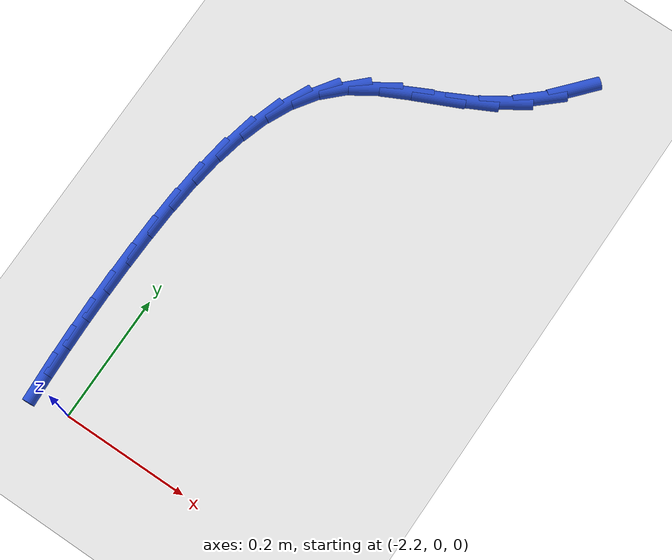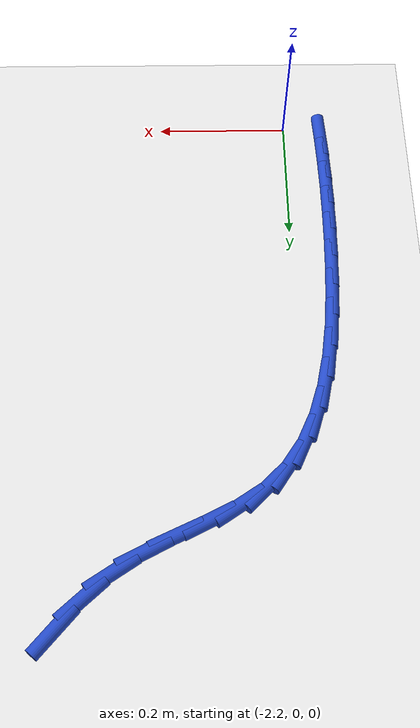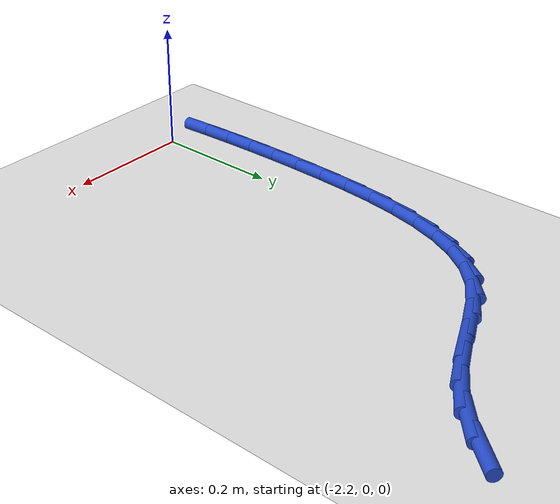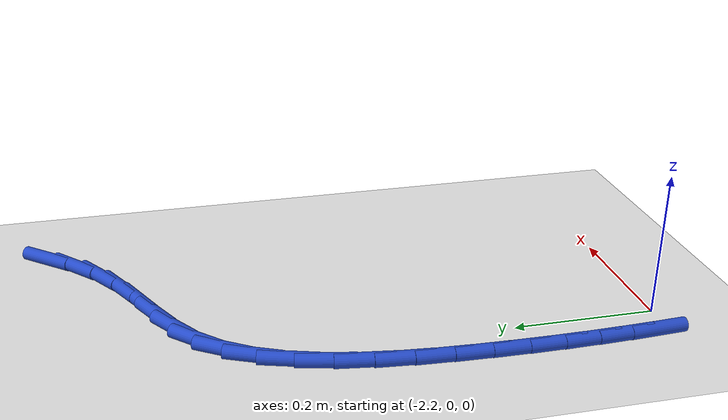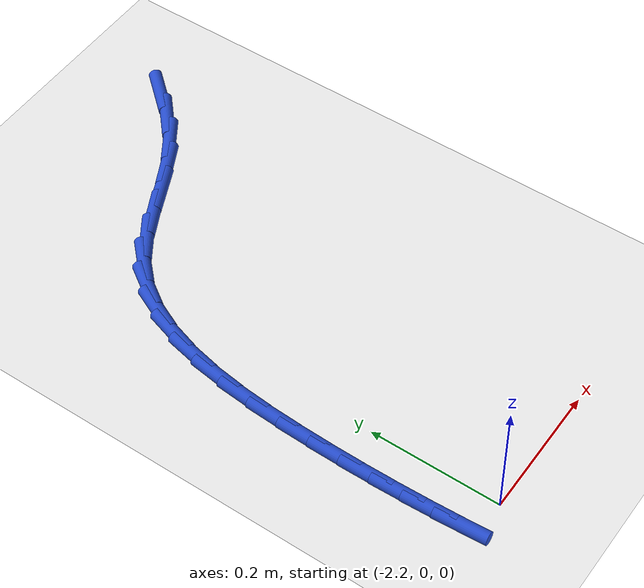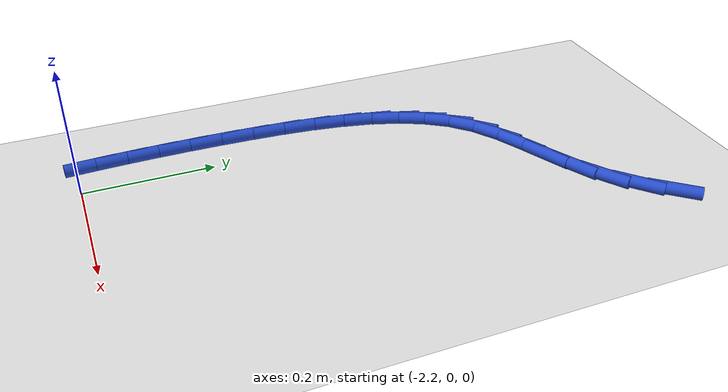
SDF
<sdf version="1.6">
 <world name="default">
  <model name="ground_plane">
   <static>1</static>
   <link name="link">
    <collision name="collision">
     <geometry><plane><normal>0 0 1</normal><size>100 100</size></plane></geometry>
     <surface><friction><ode><mu>100</mu><mu2>50</mu2></ode></friction></surface>
    </collision>
    <visual name="visual">
     <cast_shadows>0</cast_shadows>
     <geometry><plane><normal>0 0 1</normal><size>100 100</size></plane></geometry>
     <material>
      <script><uri>file://media/materials/scripts/gazebo.material</uri><name>Gazebo/WhiteGlow</name></script>
     </material>
    </visual>
   </link>
  </model>
  <model name="line">
   <link name="link_60">
    <pose>-1.8694316159370319 0.8093251097928374 0.01 0 1.57 0.8561077616490715</pose>
    <collision name="collision">
     <geometry><cylinder><radius>0.01</radius><length>0.08</length></cylinder></geometry>
    </collision>
    <visual name="visual">
     <material>
      <script><name>Gazebo/Blue</name><uri>file://media/materials/scripts/gazebo.material</uri></script>
     </material>
     <geometry><cylinder><radius>0.01</radius><length>0.08</length></cylinder></geometry>
    </visual>
   </link>
   <link name="link_61">
    <pose>-1.9036809981661496 0.7698542971834913 0.01 0 1.57 0.7330072373649285</pose>
    <collision name="collision">
     <geometry><cylinder><radius>0.01</radius><length>0.08</length></cylinder></geometry>
    </collision>
    <visual name="visual">
     <material>
      <script><name>Gazebo/Blue</name><uri>file://media/materials/scripts/gazebo.material</uri></script>
     </material>
     <geometry><cylinder><radius>0.01</radius><length>0.08</length></cylinder></geometry>
    </visual>
   </link>
   <link name="link_62">
    <pose>-1.9412636012015758 0.7360168822621146 0.01 0 1.57 0.5811434411380837</pose>
    <collision name="collision">
     <geometry><cylinder><radius>0.01</radius><length>0.08</length></cylinder></geometry>
    </collision>
    <visual name="visual">
     <material>
      <script><name>Gazebo/Blue</name><uri>file://media/materials/scripts/gazebo.material</uri></script>
     </material>
     <geometry><cylinder><radius>0.01</radius><length>0.08</length></cylinder></geometry>
    </visual>
   </link>
   <link name="link_63">
    <pose>-1.9824907852861735 0.7089387056081264 0.01 0 1.57 0.47345387876281536</pose>
    <collision name="collision">
     <geometry><cylinder><radius>0.01</radius><length>0.08</length></cylinder></geometry>
    </collision>
    <visual name="visual">
     <material>
      <script><name>Gazebo/Blue</name><uri>file://media/materials/scripts/gazebo.material</uri></script>
     </material>
     <geometry><cylinder><radius>0.01</radius><length>0.08</length></cylinder></geometry>
    </visual>
   </link>
   <link name="link_64">
    <pose>-2.025813441250407 0.6867437017705974 0.01 0 1.57 0.43521179561273854</pose>
    <collision name="collision">
     <geometry><cylinder><radius>0.01</radius><length>0.08</length></cylinder></geometry>
    </collision>
    <visual name="visual">
     <material>
      <script><name>Gazebo/Blue</name><uri>file://media/materials/scripts/gazebo.material</uri></script>
     </material>
     <geometry><cylinder><radius>0.01</radius><length>0.08</length></cylinder></geometry>
    </visual>
   </link>
   <link name="link_65">
    <pose>-2.0691009011688686 0.666617448169676 0.01 0 1.57 0.4696901879516021</pose>
    <collision name="collision">
     <geometry><cylinder><radius>0.01</radius><length>0.08</length></cylinder></geometry>
    </collision>
    <visual name="visual">
     <material>
      <script><name>Gazebo/Blue</name><uri>file://media/materials/scripts/gazebo.material</uri></script>
     </material>
     <geometry><cylinder><radius>0.01</radius><length>0.08</length></cylinder></geometry>
    </visual>
   </link>
   <link name="link_66">
    <pose>-2.110222300188062 0.6457452044779565 0.01 0 1.57 0.5858058856590932</pose>
    <collision name="collision">
     <geometry><cylinder><radius>0.01</radius><length>0.08</length></cylinder></geometry>
    </collision>
    <visual name="visual">
     <material>
      <script><name>Gazebo/Blue</name><uri>file://media/materials/scripts/gazebo.material</uri></script>
     </material>
     <geometry><cylinder><radius>0.01</radius><length>0.08</length></cylinder></geometry>
    </visual>
   </link>
   <link name="link_67">
    <pose>-2.1470467734544916 0.6213122303680326 0.01 0 1.57 0.7815354891608881</pose>
    <collision name="collision">
     <geometry><cylinder><radius>0.01</radius><length>0.08</length></cylinder></geometry>
    </collision>
    <visual name="visual">
     <material>
      <script><name>Gazebo/Blue</name><uri>file://media/materials/scripts/gazebo.material</uri></script>
     </material>
     <geometry><cylinder><radius>0.01</radius><length>0.08</length></cylinder></geometry>
    </visual>
   </link>
   <link name="link_68">
    <pose>-2.177720723925913 0.5908743362183856 0.01 0 1.57 0.9788627321762867</pose>
    <collision name="collision">
     <geometry><cylinder><radius>0.01</radius><length>0.08</length></cylinder></geometry>
    </collision>
    <visual name="visual">
     <material>
      <script><name>Gazebo/Blue</name><uri>file://media/materials/scripts/gazebo.material</uri></script>
     </material>
     <geometry><cylinder><radius>0.01</radius><length>0.08</length></cylinder></geometry>
    </visual>
   </link>
   <link name="link_69">
    <pose>-2.2022215283176996 0.55443431179284 0.01 0 1.57 1.1400210119796954</pose>
    <collision name="collision">
     <geometry><cylinder><radius>0.01</radius><length>0.08</length></cylinder></geometry>
    </collision>
    <visual name="visual">
     <material>
      <script><name>Gazebo/Blue</name><uri>file://media/materials/scripts/gazebo.material</uri></script>
     </material>
     <geometry><cylinder><radius>0.01</radius><length>0.08</length></cylinder></geometry>
    </visual>
   </link>
   <link name="link_70">
    <pose>-2.221268980267725 0.5129871396144724 0.01 0 1.57 1.2656913137448729</pose>
    <collision name="collision">
     <geometry><cylinder><radius>0.01</radius><length>0.08</length></cylinder></geometry>
    </collision>
    <visual name="visual">
     <material>
      <script><name>Gazebo/Blue</name><uri>file://media/materials/scripts/gazebo.material</uri></script>
     </material>
     <geometry><cylinder><radius>0.01</radius><length>0.08</length></cylinder></geometry>
    </visual>
   </link>
   <link name="link_71">
    <pose>-2.2355849912898944 0.46753063261228855 0.01 0 1.57 1.3612722500029204</pose>
    <collision name="collision">
     <geometry><cylinder><radius>0.01</radius><length>0.08</length></cylinder></geometry>
    </collision>
    <visual name="visual">
     <material>
      <script><name>Gazebo/Blue</name><uri>file://media/materials/scripts/gazebo.material</uri></script>
     </material>
     <geometry><cylinder><radius>0.01</radius><length>0.08</length></cylinder></geometry>
    </visual>
   </link>
   <link name="link_72">
    <pose>-2.245891472898108 0.4190626037152952 0.01 0 1.57 1.4326443309962547</pose>
    <collision name="collision">
     <geometry><cylinder><radius>0.01</radius><length>0.08</length></cylinder></geometry>
    </collision>
    <visual name="visual">
     <material>
      <script><name>Gazebo/Blue</name><uri>file://media/materials/scripts/gazebo.material</uri></script>
     </material>
     <geometry><cylinder><radius>0.01</radius><length>0.08</length></cylinder></geometry>
    </visual>
   </link>
   <link name="link_73">
    <pose>-2.2529103366062695 0.36858086585249755 0.01 0 1.57 1.484537854411256</pose>
    <collision name="collision">
     <geometry><cylinder><radius>0.01</radius><length>0.08</length></cylinder></geometry>
    </collision>
    <visual name="visual">
     <material>
      <script><name>Gazebo/Blue</name><uri>file://media/materials/scripts/gazebo.material</uri></script>
     </material>
     <geometry><cylinder><radius>0.01</radius><length>0.08</length></cylinder></geometry>
    </visual>
   </link>
   <link name="link_74">
    <pose>-2.25736349392828 0.3170832319529028 0.01 0 1.57 1.5201878037773906</pose>
    <collision name="collision">
     <geometry><cylinder><radius>0.01</radius><length>0.08</length></cylinder></geometry>
    </collision>
    <visual name="visual">
     <material>
      <script><name>Gazebo/Blue</name><uri>file://media/materials/scripts/gazebo.material</uri></script>
     </material>
     <geometry><cylinder><radius>0.01</radius><length>0.08</length></cylinder></geometry>
    </visual>
   </link>
   <link name="link_75">
    <pose>-2.2599728563780443 0.2655675149455166 0.01 0 1.57 1.5424325096397702</pose>
    <collision name="collision">
     <geometry><cylinder><radius>0.01</radius><length>0.08</length></cylinder></geometry>
    </collision>
    <visual name="visual">
     <material>
      <script><name>Gazebo/Blue</name><uri>file://media/materials/scripts/gazebo.material</uri></script>
     </material>
     <geometry><cylinder><radius>0.01</radius><length>0.08</length></cylinder></geometry>
    </visual>
   </link>
   <link name="link_76">
    <pose>-2.2614090478918443 0.21494645982918356 0.01 0 1.57 1.560375229400733</pose>
    <collision name="collision">
     <geometry><cylinder><radius>0.01</radius><length>0.08</length></cylinder></geometry>
    </collision>
    <visual name="visual">
     <material>
      <script><name>Gazebo/Blue</name><uri>file://media/materials/scripts/gazebo.material</uri></script>
     </material>
     <geometry><cylinder><radius>0.01</radius><length>0.08</length></cylinder></geometry>
    </visual>
   </link>
   <link name="link_77">
    <pose>-2.2619249784983526 0.16543997214397216 0.01 0 1.57 -1.5634799647741016</pose>
    <collision name="collision">
     <geometry><cylinder><radius>0.01</radius><length>0.08</length></cylinder></geometry>
    </collision>
    <visual name="visual">
     <material>
      <script><name>Gazebo/Blue</name><uri>file://media/materials/scripts/gazebo.material</uri></script>
     </material>
     <geometry><cylinder><radius>0.01</radius><length>0.08</length></cylinder></geometry>
    </visual>
   </link>
   <link name="link_78">
    <pose>-2.2615700587487435 0.11693042385665033 0.01 0 1.57 -1.546076128135567</pose>
    <collision name="collision">
     <geometry><cylinder><radius>0.01</radius><length>0.08</length></cylinder></geometry>
    </collision>
    <visual name="visual">
     <material>
      <script><name>Gazebo/Blue</name><uri>file://media/materials/scripts/gazebo.material</uri></script>
     </material>
     <geometry><cylinder><radius>0.01</radius><length>0.08</length></cylinder></geometry>
    </visual>
   </link>
   <link name="link_79">
    <pose>-2.2603923339440697 0.06929792246747794 0.01 0 1.57 -1.5291676945719606</pose>
    <collision name="collision">
     <geometry><cylinder><radius>0.01</radius><length>0.08</length></cylinder></geometry>
    </collision>
    <visual name="visual">
     <material>
      <script><name>Gazebo/Blue</name><uri>file://media/materials/scripts/gazebo.material</uri></script>
     </material>
     <geometry><cylinder><radius>0.01</radius><length>0.08</length></cylinder></geometry>
    </visual>
   </link>
   <link name="link_80">
    <pose>-2.2584398493853843 0.022422575476713672 0.01 0 1.57 -1.5129174894336377</pose>
    <collision name="collision">
     <geometry><cylinder><radius>0.01</radius><length>0.08</length></cylinder></geometry>
    </collision>
    <visual name="visual">
     <material>
      <script><name>Gazebo/Blue</name><uri>file://media/materials/scripts/gazebo.material</uri></script>
     </material>
     <geometry><cylinder><radius>0.01</radius><length>0.08</length></cylinder></geometry>
    </visual>
   </link>
  </model>
 </world>
</sdf>
